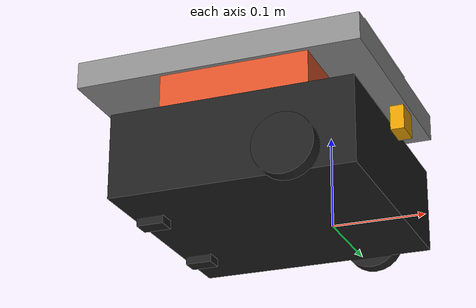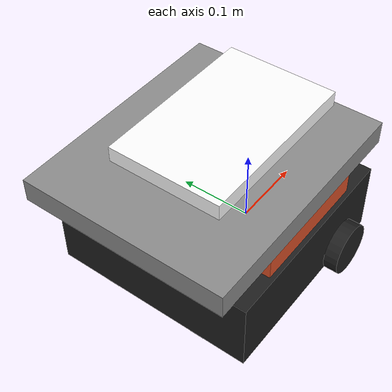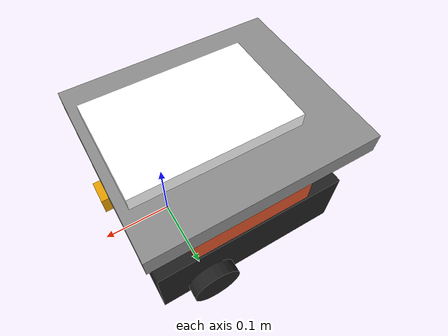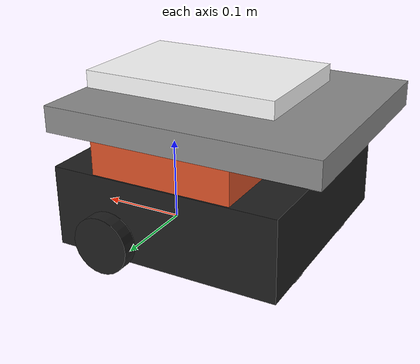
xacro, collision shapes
<?xml version="1.0" ?>
<robot name="sara" xmlns:xacro="http://ros.org/wiki/xacro">

  <xacro:include filename="$(find sara_description)/models/common_properties.xacro"/>
  <xacro:include filename="$(find sara_description)/models/sara.gazebo.xacro"/>

  <link name="base_footprint"/>

  <joint name="base_joint" type="fixed">
    <parent link="base_footprint"/>
    <child link="base_link"/>
    <origin xyz="0.0 0.0 0.010" rpy="0 0 0"/>
  </joint>

  <link name="base_link">
    <visual>
      <origin xyz="-0.064 0 0.0" rpy="0 0 0"/>
      <geometry>
        <mesh filename="package://sara_description/meshes/bases/waffle_pi_base.stl" scale="0.001 0.001 0.001"/>
      </geometry>
      <material name="light_black"/>
    </visual>

    <collision>
      <origin xyz="-0.064 0 0.047" rpy="0 0 0"/>
      <geometry>
        <box size="0.266 0.266 0.094"/>
      </geometry>
    </collision>

    <inertial>
      <origin xyz="0 0 0" rpy="0 0 0"/>
      <mass value="1.3729096e+00"/>
      <inertia ixx="8.7002718e-03" ixy="-4.7576583e-05" ixz="1.1160499e-04"
               iyy="8.6195418e-03" iyz="-3.5422299e-06"
               izz="1.4612727e-02" />
    </inertial>
  </link>

  <joint name="wheel_left_joint" type="continuous">
    <parent link="base_link"/>
    <child link="wheel_left_link"/>
    <origin xyz="0.0 0.144 0.023" rpy="-1.57 0 0"/>
    <axis xyz="0 0 1"/>
    <limit effort="3.0" velocity="8.06"/>
  </joint>

  <link name="wheel_left_link">
    <visual>
      <origin xyz="0 0 0" rpy="1.57 0 0"/>
      <geometry>
        <mesh filename="package://sara_description/meshes/wheels/left_tire.stl" scale="0.001 0.001 0.001"/>
      </geometry>
      <material name="dark"/>
    </visual>

    <collision>
      <origin xyz="0 0 0" rpy="0 0 0"/>
      <geometry>
        <cylinder length="0.018" radius="0.033"/>
      </geometry>
    </collision>

    <inertial>
      <origin xyz="0 0 0" />
      <mass value="2.8498940e-02" />
      <inertia ixx="1.1175580e-05" ixy="-4.2369783e-11" ixz="-5.9381719e-09"
               iyy="1.1192413e-05" iyz="-1.4400107e-11"
               izz="2.0712558e-05" />
      </inertial>
  </link>

  <joint name="wheel_right_joint" type="continuous">
    <parent link="base_link"/>
    <child link="wheel_right_link"/>
    <origin xyz="0.0 -0.144 0.023" rpy="-1.57 0 0"/>
    <axis xyz="0 0 1"/>
    <limit effort="3.0" velocity="8.06"/>
  </joint>

  <link name="wheel_right_link">
    <visual>
      <origin xyz="0 0 0" rpy="1.57 0 0"/>
      <geometry>
        <mesh filename="package://sara_description/meshes/wheels/right_tire.stl" scale="0.001 0.001 0.001"/>
      </geometry>
      <material name="dark"/>
    </visual>

    <collision>
      <origin xyz="0 0 0" rpy="0 0 0"/>
      <geometry>
        <cylinder length="0.018" radius="0.033"/>
      </geometry>
    </collision>

    <inertial>
      <origin xyz="0 0 0" />
      <mass value="2.8498940e-02" />
      <inertia ixx="1.1175580e-05" ixy="-4.2369783e-11" ixz="-5.9381719e-09"
               iyy="1.1192413e-05" iyz="-1.4400107e-11"
               izz="2.0712558e-05" />
      </inertial>
  </link>

  <joint name="caster_back_right_joint" type="fixed">
    <parent link="base_link"/>
    <child link="caster_back_right_link"/>
    <origin xyz="-0.177 -0.064 -0.004" rpy="-1.57 0 0"/>
  </joint>

  <link name="caster_back_right_link">
    <collision>
      <origin xyz="0 0.001 0" rpy="0 0 0"/>
      <geometry>
        <box size="0.030 0.009 0.020"/>
      </geometry>
    </collision>

    <inertial>
      <origin xyz="0 0 0" />
      <mass value="0.005" />
      <inertia ixx="0.001" ixy="0.0" ixz="0.0"
               iyy="0.001" iyz="0.0"
               izz="0.001" />
    </inertial>
  </link>

  <joint name="caster_back_left_joint" type="fixed">
    <parent link="base_link"/>
    <child link="caster_back_left_link"/>
    <origin xyz="-0.177 0.064 -0.004" rpy="-1.57 0 0"/>
  </joint>

  <link name="caster_back_left_link">
    <collision>
      <origin xyz="0 0.001 0" rpy="0 0 0"/>
      <geometry>
        <box size="0.030 0.009 0.020"/>
      </geometry>
    </collision>

    <inertial>
      <origin xyz="0 0 0" />
      <mass value="0.005" />
      <inertia ixx="0.001" ixy="0.0" ixz="0.0"
               iyy="0.001" iyz="0.0"
               izz="0.001" />
    </inertial>
  </link>

  <joint name="imu_joint" type="fixed">
    <parent link="base_link"/>
    <child link="imu_link"/>
    <origin xyz="0.0 0 0.068" rpy="0 0 0"/>
  </joint>

  <link name="imu_link"/>

  <joint name="scan_joint" type="fixed">
    <parent link="base_link"/>
    <child link="base_scan"/>
    <origin xyz="-0.064 0 0.122" rpy="0 0 0"/>
  </joint>

  <link name="base_scan">
    <visual>
      <origin xyz="0 0 0.0" rpy="0 0 0"/>
      <geometry>
        <mesh filename="package://sara_description/meshes/sensors/lds.stl" scale="0.001 0.001 0.001"/>
      </geometry>
      <material name="dark"/>
    </visual>

    <collision>
      <origin xyz="0.015 0 -0.0065" rpy="0 0 0"/>
      <geometry>
        <cylinder length="0.0315" radius="0.055"/>
      </geometry>
    </collision>

    <inertial>
      <mass value="0.114" />
      <origin xyz="0 0 0" />
      <inertia ixx="0.001" ixy="0.0" ixz="0.0"
               iyy="0.001" iyz="0.0"
               izz="0.001" />
    </inertial>
  </link>

  <joint name="camera_joint" type="fixed">
    <origin xyz="0.073 -0.011 0.084" rpy="0 0 0"/>
    <parent link="base_link"/>
    <child link="camera_link"/>
  </joint>

  <link name="camera_link">
    <collision>
      <origin xyz="0.005 0.011 0.013" rpy="0 0 0"/>
      <geometry>
        <box size="0.015 0.030 0.027"/>
      </geometry>
    </collision>
  </link>

  <joint name="camera_rgb_joint" type="fixed">
    <origin xyz="0.003 0.011 0.009" rpy="0 0 0"/>
    <parent link="camera_link"/>
    <child link="camera_rgb_frame"/>
  </joint>
  <link name="camera_rgb_frame"/>

  <joint name="camera_rgb_optical_joint" type="fixed">
    <origin xyz="0 0 0" rpy="-1.57 0 -1.57"/>
    <parent link="camera_rgb_frame"/>
    <child link="camera_rgb_optical_frame"/>
  </joint>
  <link name="camera_rgb_optical_frame"/>

  <joint name="cart_mount_joint" type="fixed">
    <parent link="base_link"/>
    <child link="base_cart"/>
    <origin xyz="-0.064 0.0 0.0915" rpy="0 0 0"/>
  </joint>

  <link name="base_cart">
    <inertial>
      <origin xyz="0.00029076 0.0018904 0.0225" rpy="0 0 0"/>
      <mass value="0.0034946"/>
      <inertia ixx="5.3922E-07" ixy="6.2156E-23" ixz="1.2408E-23"
               iyy="5.3922E-07" iyz="1.8924E-21"
               izz="1.322E-08"/>
    </inertial>
    <visual>
      <origin xyz="0 0 0" rpy="0 0 0"/>
      <geometry>
        <mesh filename="package://sara_description/meshes/cart/base_cart.STL"/>
      </geometry>
      <material name="cart_orange">
        <color rgba="0.86667 0.32157 0.15686 1"/>
      </material>
    </visual>
    <collision>
      <origin xyz="0.0013 0.0020 0.0225" rpy="0 0 0"/>
      <geometry>
        <box size="0.1635 0.2585 0.0450"/>
      </geometry>
    </collision>
  </link>

  <joint name="cart_platform_joint" type="fixed">
    <parent link="base_cart"/>
    <child link="base_platform"/>
    <origin xyz="0 0 0.041" rpy="0 0 0"/>
  </joint>

  <link name="base_platform">
    <inertial>
      <origin xyz="0.0037131 0.00016219 0.044512" rpy="0 0 0"/>
      <mass value="1.4652"/>
      <inertia ixx="0.0032997" ixy="8.2131E-06" ixz="-5.2149E-06"
               iyy="0.0030443" iyz="-1.1568E-06"
               izz="0.0037989"/>
    </inertial>
    <visual>
      <origin xyz="0 0 0" rpy="0 0 0"/>
      <geometry>
        <mesh filename="package://sara_description/meshes/cart/Base_platform.STL"/>
      </geometry>
      <material name="cart_grey">
        <color rgba="0.55 0.55 0.55 1"/>
      </material>
    </visual>
    <collision>
      <origin xyz="-0.0173 0.0000 0.015" rpy="0 0 0"/>
      <geometry>
        <box size="0.3150 0.2655 0.03"/>
      </geometry>
    </collision>
  </link>

  <joint name="cart_weight_joint" type="prismatic">
    <parent link="base_platform"/>
    <child link="base_weight"/>
    <origin xyz="0.015647 0 0.0552" rpy="0 0 0"/>
    <axis xyz="0 0 1"/>
    <limit lower="-0.0005" upper="0.0005" effort="100" velocity="0.01"/>
    <dynamics damping="50.0" friction="0.0"/>
  </joint>

  <link name="base_weight">
    <inertial>
      <origin xyz="0.00067058 -1.299E-14 -0.0051801" rpy="0 0 0"/>
      <mass value="0.19409"/>
      <inertia ixx="0.00032968" ixy="8.3723E-15" ixz="1.2781E-06"
               iyy="0.0007598" iyz="-2.6448E-17"
               izz="0.0010856"/>
    </inertial>
    <visual>
      <origin xyz="0 0 0" rpy="0 0 0"/>
      <geometry>
        <mesh filename="package://sara_description/meshes/cart/Base_weight.STL"/>
      </geometry>
      <material name="cart_white">
        <color rgba="1 1 1 1"/>
      </material>
    </visual>
    <!-- Box approximation, see base_cart's collision comment above -->
    <collision>
      <origin xyz="-0.0017 0.0000 -0.0100" rpy="0 0 0"/>
      <geometry>
        <box size="0.2280 0.1480 0.0200"/>
      </geometry>
    </collision>
  </link>

</robot>
